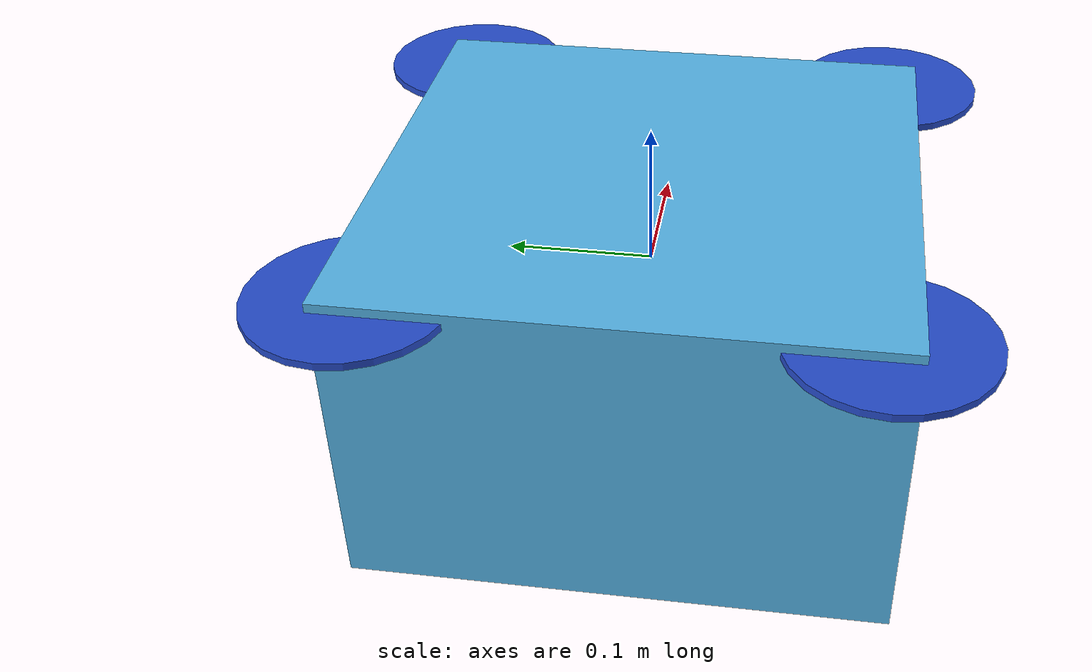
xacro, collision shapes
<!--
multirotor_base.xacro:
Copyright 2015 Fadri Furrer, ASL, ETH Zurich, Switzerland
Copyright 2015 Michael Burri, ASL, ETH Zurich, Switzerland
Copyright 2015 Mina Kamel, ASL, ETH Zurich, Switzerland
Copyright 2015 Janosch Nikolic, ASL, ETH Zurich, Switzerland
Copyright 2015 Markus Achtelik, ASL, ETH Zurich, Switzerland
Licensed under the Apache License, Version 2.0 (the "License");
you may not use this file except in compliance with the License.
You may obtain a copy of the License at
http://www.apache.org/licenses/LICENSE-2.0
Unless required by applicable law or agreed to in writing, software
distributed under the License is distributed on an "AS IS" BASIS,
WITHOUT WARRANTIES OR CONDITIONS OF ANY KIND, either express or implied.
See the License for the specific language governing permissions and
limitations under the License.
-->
<?xml version="1.0"?>

<robot name="quadrotor_f450" xmlns:xacro="http://ros.org/wiki/xacro">
  <!-- Properties that can be assigned at build time as arguments.
  Is there a reason not to make all properties arguments?
  -->
  <xacro:arg name='name' default='quadrotor_f450' />
  <xacro:arg name='mavlink_addr' default='INADDR_ANY' />
  <xacro:arg name='mavlink_udp_port' default='14560' />
  <xacro:arg name='mavlink_tcp_port' default='4560' />
  <xacro:arg name='serial_enabled' default='false' />
  <xacro:arg name='serial_device' default='/dev/ttyACM0' />
  <xacro:arg name='baudrate' default='921600' />
  <xacro:arg name='qgc_addr' default='INADDR_ANY' />
  <xacro:arg name='qgc_udp_port' default='14550' />
  <xacro:arg name='sdk_addr' default='INADDR_ANY' />
  <xacro:arg name='sdk_udp_port' default='14540' />
  <xacro:arg name='hil_mode' default='false' />
  <xacro:arg name='hil_state_level' default='false' />
  <xacro:arg name='send_vision_estimation' default='false' />
  <xacro:arg name='send_odometry' default='false' />
  <xacro:arg name='enable_lockstep' default='true' />
  <xacro:arg name='use_tcp' default='true' />
  <xacro:arg name='vehicle_is_tailsitter' default='false' />
  <xacro:arg name='visual_material' default='DarkGrey' />
  <xacro:arg name='enable_mavlink_interface' default='false' />
  <xacro:arg name='enable_wind' default='false' />
  <xacro:arg name='enable_ground_truth' default='false' />
  <xacro:arg name='enable_logging' default='false' />
  <xacro:arg name='log_file' default='quadrotor_f450' />

  <!-- macros for gazebo plugins, sensors -->
  <xacro:include filename="$(find quadrotor_sim)/urdf/component_snippets.xacro" />

  <!-- Instantiate iris "mechanics" -->
  <xacro:include filename="$(find quadrotor_sim)/urdf/quad.xacro" />

  <xacro:if value="$(arg enable_wind)">
    <xacro:wind_plugin_macro
        namespace="${namespace}"
        wind_direction="0 0 1"
        wind_force_mean="0.7"
        xyz_offset="1 0 0"
        wind_gust_direction="0 0 0"
        wind_gust_duration="0"
        wind_gust_start="0"
        wind_gust_force_mean="0"
        />
  </xacro:if>

  <!-- Instantiate gps plugin. -->

  <!-- Instantiate magnetometer plugin. -->

  <!-- Instantiate barometer plugin. -->

  <!-- Instantiate GroundTruth plugin. -->
  <xacro:if value="$(arg enable_mavlink_interface)">
  <!-- Instantiate mavlink telemetry interface. -->
  <xacro:mavlink_interface_macro
    namespace="${namespace}"
    imu_sub_topic="/imu"
    gps_sub_topic="/gps"
    mag_sub_topic="/mag"
    baro_sub_topic="/baro"
    mavlink_addr="$(arg mavlink_addr)"
    mavlink_udp_port="$(arg mavlink_udp_port)"
    mavlink_tcp_port="$(arg mavlink_tcp_port)"
    serial_enabled="$(arg serial_enabled)"
    serial_device="$(arg serial_device)"
    baudrate="$(arg baudrate)"
    qgc_addr="$(arg qgc_addr)"
    qgc_udp_port="$(arg qgc_udp_port)"
    sdk_addr="$(arg sdk_addr)"
    sdk_udp_port="$(arg sdk_udp_port)"
    hil_mode="$(arg hil_mode)"
    hil_state_level="$(arg hil_state_level)"
    vehicle_is_tailsitter="$(arg vehicle_is_tailsitter)"
    send_vision_estimation="$(arg send_vision_estimation)"
    send_odometry="$(arg send_odometry)"
    enable_lockstep="$(arg enable_lockstep)"
    use_tcp="$(arg use_tcp)"
    >
  </xacro:mavlink_interface_macro>
  </xacro:if>

  <!-- Mount an ADIS16448 IMU. -->

  <xacro:if value="$(arg enable_ground_truth)">
    <!-- Mount an IMU providing ground truth. -->
    <xacro:imu_plugin_macro
      namespace="${namespace}"
      imu_suffix="gt"
      parent_link="base_link"
      imu_topic="ground_truth/imu"
      mass_imu_sensor="0.00001"
      gyroscope_noise_density="0.0"
      gyroscopoe_random_walk="0.0"
      gyroscope_bias_correlation_time="1000.0"
      gyroscope_turn_on_bias_sigma="0.0"
      accelerometer_noise_density="0.0"
      accelerometer_random_walk="0.0"
      accelerometer_bias_correlation_time="300.0"
      accelerometer_turn_on_bias_sigma="0.0"
    >
      <inertia ixx="0.00001" ixy="0.0" ixz="0.0" iyy="0.00001" iyz="0.0" izz="0.00001" />
      <origin xyz="0 0 0" rpy="0 0 0" />
    </xacro:imu_plugin_macro>

    <!-- Mount a generic odometry sensor providing ground truth. -->
    <xacro:odometry_plugin_macro
      namespace="${namespace}/ground_truth"
      odometry_sensor_suffix="gt"
      parent_link="base_link"
      pose_topic="pose"
      pose_with_covariance_topic="pose_with_covariance"
      position_topic="position"
      transform_topic="transform"
      odometry_topic="odometry"
      parent_frame_id="world"
      mass_odometry_sensor="0.00001"
      measurement_divisor="1"
      measurement_delay="0"
      unknown_delay="0.0"
      noise_normal_position="0 0 0"
      noise_normal_quaternion="0 0 0"
      noise_normal_linear_velocity="0 0 0"
      noise_normal_angular_velocity="0 0 0"
      noise_uniform_position="0 0 0"
      noise_uniform_quaternion="0 0 0"
      noise_uniform_linear_velocity="0 0 0"
      noise_uniform_angular_velocity="0 0 0"
      enable_odometry_map="false"
      odometry_map=""
      image_scale=""
    >
      <inertia ixx="0.00001" ixy="0.0" ixz="0.0" iyy="0.00001" iyz="0.0" izz="0.00001" /> <!-- [kg.m^2] [kg.m^2] [kg.m^2] [kg.m^2] [kg.m^2] [kg.m^2] -->
      <origin xyz="0.0 0.0 0.0" rpy="0.0 0.0 0.0" />
    </xacro:odometry_plugin_macro>
  </xacro:if>

  <xacro:if value="$(arg enable_logging)">
    <!-- Instantiate a logger -->
    <xacro:bag_plugin_macro
      namespace="${namespace}"
      bag_file="$(arg log_file)"
      rotor_velocity_slowdown_sim="${rotor_velocity_slowdown_sim}"
    >
    </xacro:bag_plugin_macro>
  </xacro:if>

</robot>

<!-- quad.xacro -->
<robot name="quadrotor_f450" xmlns:xacro="http://ros.org/wiki/xacro">
  <!-- Properties -->
  <xacro:property name="namespace" value="" />
  <xacro:property name="rotor_velocity_slowdown_sim" value="10" />
  <xacro:property name="mesh_file" value="base_link.STL" />
  <xacro:property name="mesh_scale" value="1 1 1"/>
  <xacro:property name="mesh_scale_prop" value="1 1 1"/>
  <xacro:property name="mass" value="1.65" /> <!-- [kg] -->
  <xacro:property name="body_width" value="0.3585" />
  <xacro:property name="body_height" value="0.22" />
  <xacro:property name="mass_rotor" value="0.01" /> <!-- [kg] -->
  <xacro:property name="arm_length_front_x" value="0.15891" />
  <xacro:property name="arm_length_back_x" value="0.1589" />
  <xacro:property name="arm_length_front_y" value="0.15872" />
  <xacro:property name="arm_length_back_y" value="0.15909" />
  <xacro:property name="rotor_offset_top" value="0.062676" />
  <xacro:property name="radius_rotor" value="0.065" />
  <xacro:property name="motor_constant" value="12.8627e-06" /> <!-- [kg.m/s^2] -->
  <xacro:property name="moment_constant" value="0.017" />
  <xacro:property name="time_constant_up" value="0.0125" />
  <xacro:property name="time_constant_down" value="0.025" />
  <xacro:property name="max_rot_velocity" value="900" /> <!-- [rad/s] -->
  <xacro:property name="sin30" value="0.5" />
  <xacro:property name="cos30" value="0.866025403784" />
  <xacro:property name="sqrt2" value="1.4142135623730951" />
  <xacro:property name="rotor_drag_coefficient" value="8.06428e-04" />
  <xacro:property name="rolling_moment_coefficient" value="0.000001" />
  <xacro:property name="color" value="$(arg visual_material)" />

  <!-- Property Blocks -->
  <xacro:property name="body_inertia">
    <inertia
    ixx="0.014959"
    iyy="0.022005"
    izz="0.028033"
    ixy="0.0" ixz="0.0" iyz="0.0" /> <!-- [kg.m^2] [kg.m^2] [kg.m^2] [kg.m^2] [kg.m^2] [kg.m^2] -->
  </xacro:property>

  <!-- inertia of a single rotor, assuming it is a cuboid. Height=3mm, width=15mm -->
  <xacro:property name="rotor_inertia_0">
    <inertia
    ixx="8.4464e-07"
    iyy="6.4014e-07"
    izz="1.4805e-06"
    ixy="-7.2191e-07" ixz="5.3515e-13"  iyz="5.5137e-13" /> <!-- [kg.m^2] [kg.m^2] [kg.m^2] [kg.m^2] [kg.m^2] [kg.m^2] -->
  </xacro:property>

  <xacro:property name="rotor_inertia_1">
    <inertia
    ixx="8.5496e-07"
    iyy="6.2836e-07"
    izz="1.479e-06"
    ixy="7.1953e-07" ixz="-4.1012e-13"  iyz="5.491e-13" /> <!-- [kg.m^2] [kg.m^2] [kg.m^2] [kg.m^2] [kg.m^2] [kg.m^2] -->
  </xacro:property>

  <xacro:property name="rotor_inertia_2">
    <inertia
    ixx="8.4464e-07"
    iyy="6.4014e-07"
    izz="1.4805e-06"
    ixy="-7.2191e-07" ixz="4.5077e-13"  iyz="4.5674e-13" /> <!-- [kg.m^2] [kg.m^2] [kg.m^2] [kg.m^2] [kg.m^2] [kg.m^2] -->
  </xacro:property>

  <xacro:property name="rotor_inertia_3">
    <inertia
    ixx="8.5496e-07"
    iyy="6.2836e-07"
    izz="1.479e-06"
    ixy="7.1953e-07" ixz="-4.184e-13"  iyz="5.3609e-13" /> <!-- [kg.m^2] [kg.m^2] [kg.m^2] [kg.m^2] [kg.m^2] [kg.m^2] -->
  </xacro:property>

  <!-- Included URDF Files -->
  <xacro:include filename="$(find quadrotor_sim)/urdf/multirotor_base.xacro" />

  <!-- Instantiate multirotor_base_macro once -->
  <xacro:multirotor_base_macro
    robot_namespace="${namespace}"
    mass="${mass}"
    body_width="${body_width}"
    body_height="${body_height}"
    mesh_file="${mesh_file}"
    mesh_scale="${mesh_scale}"
    color="${color}"
    >
    <xacro:insert_block name="body_inertia" />
  </xacro:multirotor_base_macro>

  <!-- Instantiate rotors -->
  <xacro:vertical_rotor
    robot_namespace="${namespace}"
    suffix="front_right"
    direction="ccw"
    motor_constant="${motor_constant}"
    moment_constant="${moment_constant}"
    parent="base_link"
    mass_rotor="${mass_rotor}"
    radius_rotor="${radius_rotor}"
    time_constant_up="${time_constant_up}"
    time_constant_down="${time_constant_down}"
    max_rot_velocity="${max_rot_velocity}"
    motor_number="0"
    rotor_drag_coefficient="${rotor_drag_coefficient}"
    rolling_moment_coefficient="${rolling_moment_coefficient}"
    mesh="propeller_1"
    mesh_scale="${mesh_scale_prop}"
    color="BlueTransparent">
    <origin xyz="${arm_length_back_x} -${arm_length_back_y} ${rotor_offset_top}" rpy="0 0 -0.7854" />
    <xacro:insert_block name="rotor_inertia_1" />
  </xacro:vertical_rotor>

  <xacro:vertical_rotor
    robot_namespace="${namespace}"
    suffix="back_left"
    direction="ccw"
    motor_constant="${motor_constant}"
    moment_constant="${moment_constant}"
    parent="base_link"
    mass_rotor="${mass_rotor}"
    radius_rotor="${radius_rotor}"
    time_constant_up="${time_constant_up}"
    time_constant_down="${time_constant_down}"
    max_rot_velocity="${max_rot_velocity}"
    motor_number="1"
    rotor_drag_coefficient="${rotor_drag_coefficient}"
    rolling_moment_coefficient="${rolling_moment_coefficient}"
    mesh="propeller_1"
    mesh_scale="${mesh_scale_prop}"
    color="BlueTransparent">
    <origin xyz="-${arm_length_back_x} ${arm_length_front_y} ${rotor_offset_top}" rpy="0 0 -0.7854" />
    <xacro:insert_block name="rotor_inertia_3" />
  </xacro:vertical_rotor>

  <xacro:vertical_rotor robot_namespace="${namespace}"
    suffix="front_left"
    direction="cw"
    motor_constant="${motor_constant}"
    moment_constant="${moment_constant}"
    parent="base_link"
    mass_rotor="${mass_rotor}"
    radius_rotor="${radius_rotor}"
    time_constant_up="${time_constant_up}"
    time_constant_down="${time_constant_down}"
    max_rot_velocity="${max_rot_velocity}"
    motor_number="2"
    rotor_drag_coefficient="${rotor_drag_coefficient}"
    rolling_moment_coefficient="${rolling_moment_coefficient}"
    mesh="propeller_0"
    mesh_scale="${mesh_scale_prop}"
    color="BlueTransparent">
    <origin xyz="${arm_length_front_x} ${arm_length_front_y} ${rotor_offset_top}" rpy="0 0 0.7854" />
    <xacro:insert_block name="rotor_inertia_0" />
  </xacro:vertical_rotor>

  <xacro:vertical_rotor robot_namespace="${namespace}"
    suffix="back_right"
    direction="cw"
    motor_constant="${motor_constant}"
    moment_constant="${moment_constant}"
    parent="base_link"
    mass_rotor="${mass_rotor}"
    radius_rotor="${radius_rotor}"
    time_constant_up="${time_constant_up}"
    time_constant_down="${time_constant_down}"
    max_rot_velocity="${max_rot_velocity}"
    motor_number="3"
    rotor_drag_coefficient="${rotor_drag_coefficient}"
    rolling_moment_coefficient="${rolling_moment_coefficient}"
    mesh="propeller_0"
    mesh_scale="${mesh_scale_prop}"
    color="BlueTransparent">
    <origin xyz="-${arm_length_front_x} -${arm_length_back_y} ${rotor_offset_top}" rpy="0 0 0.7854" />
    <xacro:insert_block name="rotor_inertia_2" />
  </xacro:vertical_rotor>

</robot>

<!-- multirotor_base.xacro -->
<robot xmlns:xacro="http://ros.org/wiki/xacro">
  <!-- Main multirotor link -->
  <xacro:macro name="multirotor_base_macro"
    params="robot_namespace mass body_width body_height mesh_file mesh_scale color *inertia">
    <link name="base_link"></link>

    <joint name="base_joint" type="fixed">
      <origin xyz="0 0 0" rpy="0 0 0" />
      <parent link="base_link" />
      <child link="base_link_inertia" />
    </joint>

    <link name="base_link_inertia">
      <inertial>
        <mass value="${mass}" />  <!-- [kg] -->
        <origin xyz="0 0 0" />
        <xacro:insert_block name="inertia" />
      </inertial>

      <visual>
        <origin xyz="0 0 0" rpy="0 0 0" />
        <geometry>
          <mesh filename="/home/shaswatgarg/quadROS/src/quadrotor_sim/meshes/${mesh_file}"
            scale="${mesh_scale}" />

        </geometry>
      </visual>

      <collision>
        <origin xyz="0 0 -0.0385" rpy="0 0 0" />
        <geometry>
          <box size="${body_width} ${body_width} ${body_height}" />
        </geometry>
      </collision>
    </link>

    <!-- attach multirotor_base_plugin to the base_link -->
    <gazebo>
      <plugin filename="libgazebo_multirotor_base_plugin.so" name="rosbag">
        <robotNamespace>${robot_namespace}</robotNamespace>
        <linkName>base_link</linkName>
        <rotorVelocitySlowdownSim>${rotor_velocity_slowdown_sim}</rotorVelocitySlowdownSim>
      </plugin>
    </gazebo>
    <gazebo reference="base_link">
      <material>Gazebo/${color}</material>
      <collision name='base_link_inertia_collision'>
        <surface>
          <contact>
            <ode>
              <min_depth>0.001</min_depth>
              <max_vel>0.0</max_vel>
            </ode>
          </contact>
          <friction>
            <ode/>
          </friction>
        </surface>
      </collision>
   </gazebo>
  </xacro:macro>

  <!-- Rotor joint and link -->
  <xacro:macro name="vertical_rotor"
    params="robot_namespace suffix direction motor_constant moment_constant parent mass_rotor radius_rotor time_constant_up time_constant_down max_rot_velocity motor_number rotor_drag_coefficient rolling_moment_coefficient color mesh mesh_scale *origin *inertia">
    <joint name="rotor_${motor_number}_joint" type="continuous">
      <xacro:insert_block name="origin" />
      <axis xyz="0 0 -1" />
      <!-- TODO(ff): not currently set because it's not yet supported -->
      <parent link="${parent}" />
      <child link="rotor_${motor_number}" />

    </joint>
    <!-- TODO(ff): not currently set because it's not yet supported -->
    <link name="rotor_${motor_number}">
      <inertial>
        <mass value="${mass_rotor}" /> <!-- [kg] -->
        <xacro:insert_block name="inertia" />
      </inertial>
      <visual>
        <geometry>

          <mesh filename="/home/shaswatgarg/quadROS/src/quadrotor_sim/meshes/${mesh}.STL"
            scale="${mesh_scale}" />
        </geometry>
      </visual>
      <collision>
        <geometry>
          <cylinder length="0.005" radius="${radius_rotor}" />
        </geometry>
      </collision>
    </link>
    <gazebo>
      <plugin name="${suffix}_motor_model" filename="libgazebo_motor_model.so">
        <robotNamespace>${robot_namespace}</robotNamespace>
        <jointName>rotor_${motor_number}_joint</jointName>
        <linkName>rotor_${motor_number}</linkName>
        <turningDirection>${direction}</turningDirection>
        <timeConstantUp>${time_constant_up}</timeConstantUp>
        <timeConstantDown>${time_constant_down}</timeConstantDown>
        <maxRotVelocity>${max_rot_velocity}</maxRotVelocity>
        <motorConstant>${motor_constant}</motorConstant>
        <momentConstant>${moment_constant}</momentConstant>
        <commandSubTopic>/gazebo/command/motor_speed</commandSubTopic>
        <motorNumber>${motor_number}</motorNumber>
        <rotorDragCoefficient>${rotor_drag_coefficient}</rotorDragCoefficient>
        <rollingMomentCoefficient>${rolling_moment_coefficient}</rollingMomentCoefficient>
        <motorSpeedPubTopic>/motor_speed/${motor_number}</motorSpeedPubTopic>
        <rotorVelocitySlowdownSim>${rotor_velocity_slowdown_sim}</rotorVelocitySlowdownSim>
      </plugin>
    </gazebo>
    <gazebo reference="rotor_${motor_number}">
      <material>Gazebo/${color}</material>
    </gazebo>
  </xacro:macro>
</robot>
